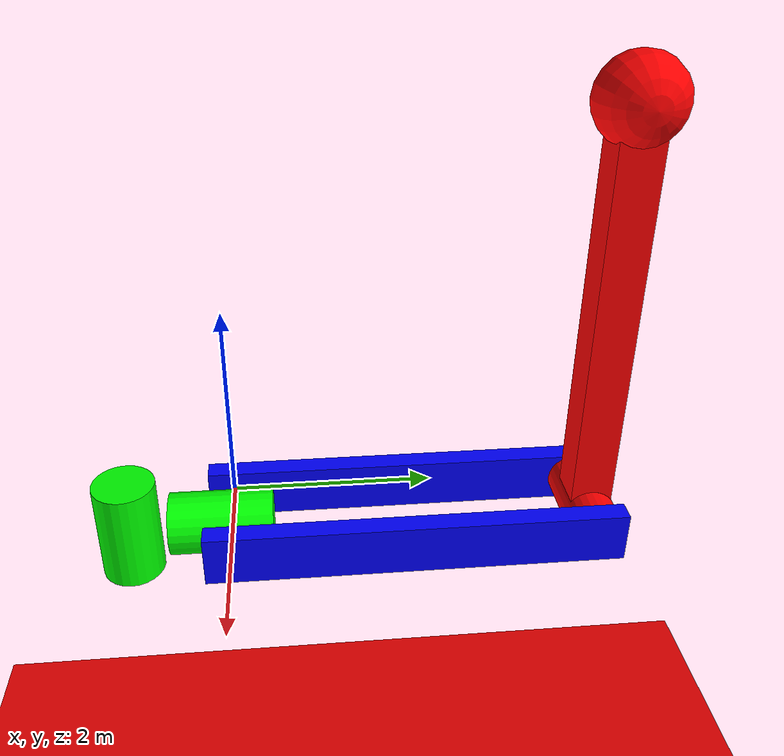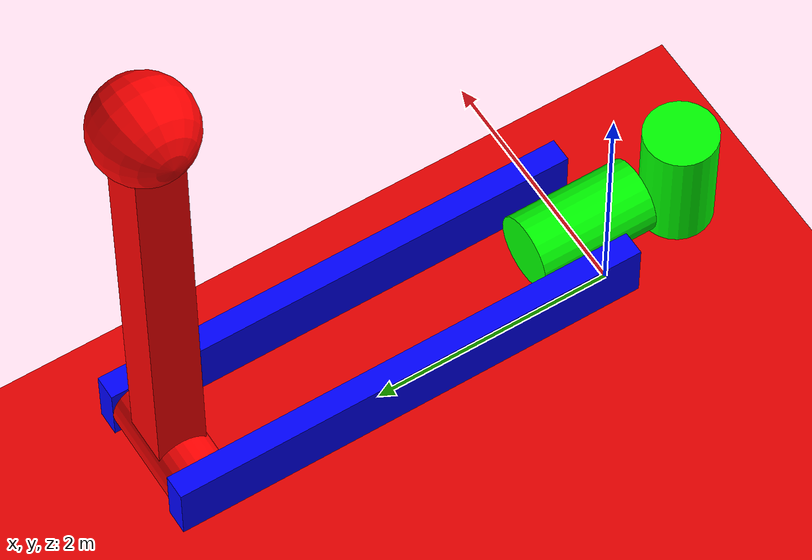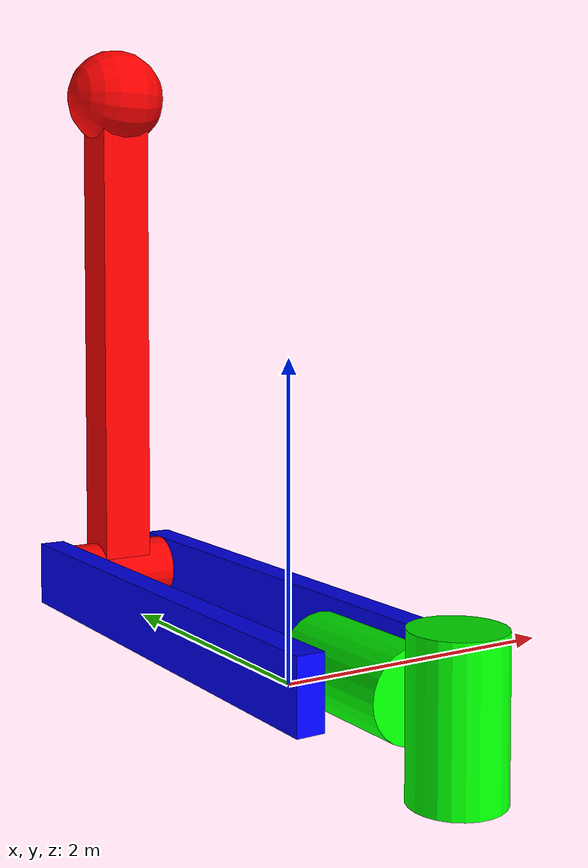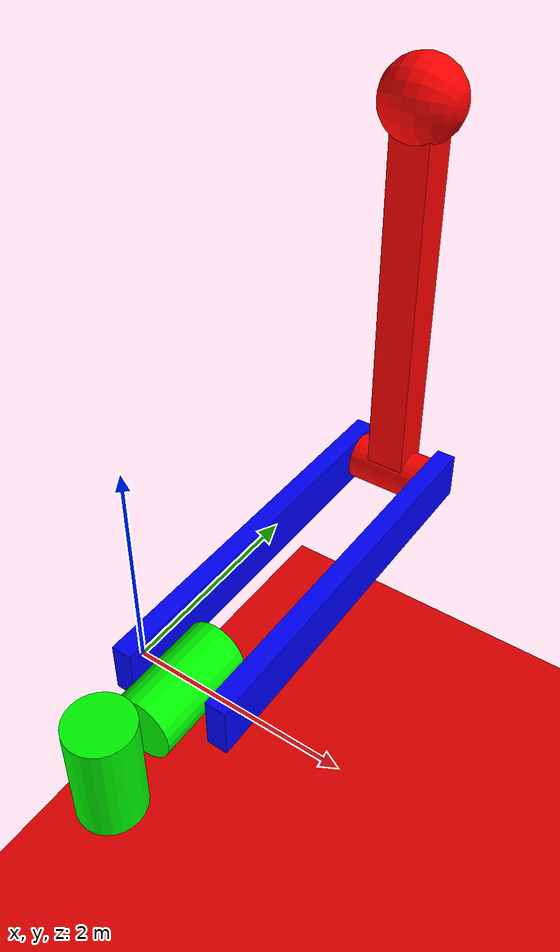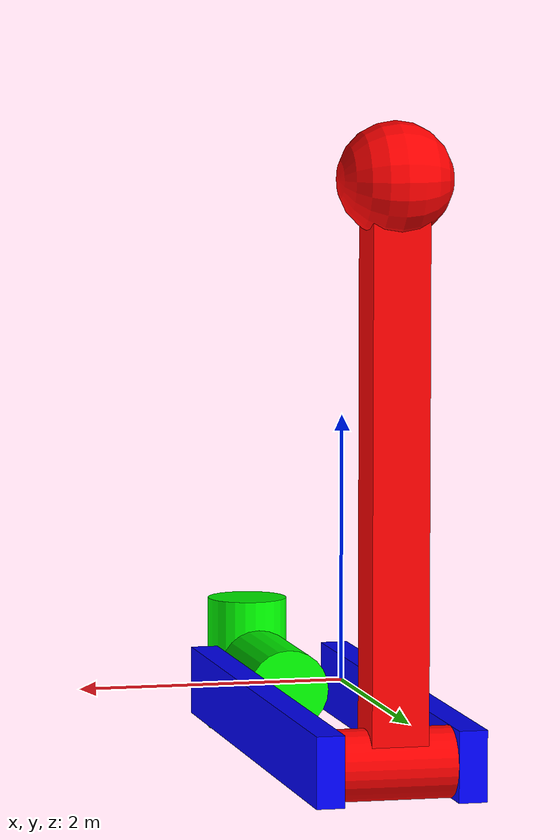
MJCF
<mujoco>
    <option timestep="0.0002" />
    <actuator>

        <motor joint="hinge_1" name="actuator_motor" gear="100"/>
        <motor joint="hinge_2" name="actuator2_motor2" gear="100"/>
        <motor joint="hinge_angle" name="actuator_angle" gear="100"/>
         <motor joint="hinge_3" name="actuator3_motor3" gear="100"/>
    </actuator>
    <asset>
        <material name="blue_" rgba="0 0 1 1" />
        <material name="green" rgba="0 1 0 1" />
        <material name="red__" rgba="1 0 0 1" />
        <material name="white" rgba="1 1 1 1" />
    </asset>
    <worldbody>
        <geom type="plane" size="10 10 0.1" pos="0 0 -5" rgba=".9 0 0 1" />
        <light diffuse=".5 .5 .5" pos="0 0 3" dir="0 0 -1" />
        <body name="link_0" pos="0 0 0">
            <joint name="hinge_3" pos="0.5 -1 0" axis="0 0 1" />
            <geom type="cylinder" size=".3 .5" pos="0.5 -1 0" euler="0 0 90" material="green" mass="0.1"/>
            <body name="link_1" pos="0 0 0">
                <joint name="hinge_angle" pos="0.5 0 0" axis="0 1 0" />
                <geom type="cylinder" size=".3 .5" pos="0.5 -0.1 0" euler="90 0 0" material="green" mass="0.1"/>
                <body name="link_2" pos="1 0 0" euler="0 0 0">
                    <joint name="hinge_1" pos="0 0 0" axis="1 0 0" />
                    <geom type="box" size=".1 .25 2" pos="0 1.75 0" euler="90 0 0" material="blue_" mass="0.3"/>
                    <geom type="box" size=".1 .25 2" pos="-1 1.75 0" euler="90 0 0" material="blue_" mass="0.3"/>
                    <body name="link_3" pos="-0.5 3.5 0" euler="0 0 0">
                        <joint name="hinge_2" pos="0 0 0" axis="1 0 0" />
                        <geom type="box" size=".2 .2 2" pos="0 0 2" euler="0 0 0" material="red__" mass="0.3"/>
                        <geom type="cylinder" size=".25 .5" pos="0 0 0" euler="0 90 0" material="red__" mass="0.1"/>
                        <geom type="sphere" size=".4" pos="0 0 4" euler="0 90 0" material="red__" mass="0.1"/>
                    </body>
                </body>
            </body>
        </body>
    </worldbody>

    <contact>
    </contact>
</mujoco>
